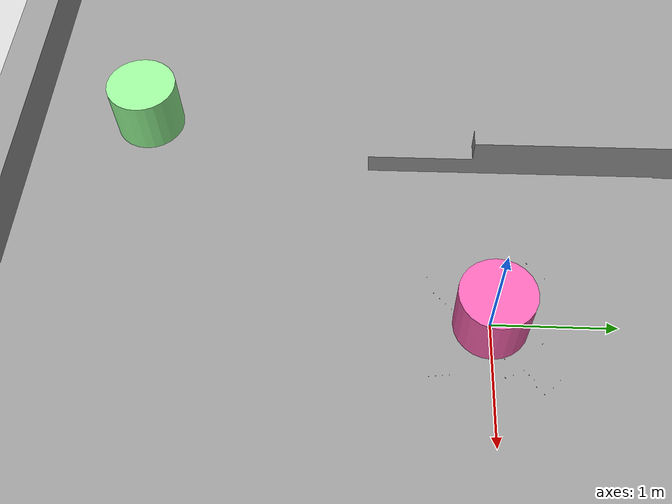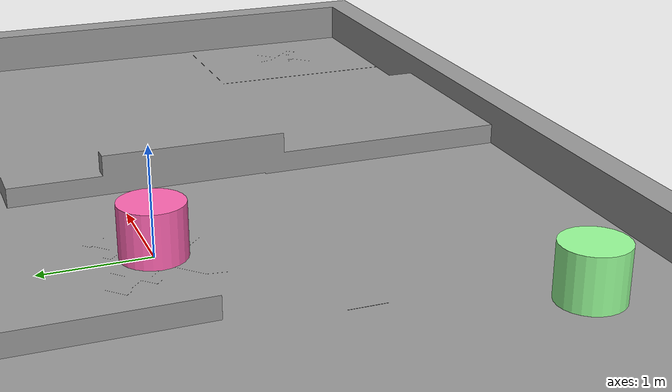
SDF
<sdf version='1.7'>
  <world name='default'>
    <model name='ground_plane'>
      <static>1</static>
      <link name='link'>
        <collision name='collision'>
          <geometry>
            <plane>
              <normal>0 0 1</normal>
              <size>100 100</size>
            </plane>
          </geometry>
          <surface>
            <contact>
              <collide_bitmask>65535</collide_bitmask>
              <ode/>
            </contact>
            <friction>
              <ode>
                <mu>100</mu>
                <mu2>50</mu2>
              </ode>
              <torsional>
                <ode/>
              </torsional>
            </friction>
            <bounce/>
          </surface>
          <max_contacts>10</max_contacts>
        </collision>
        <visual name='visual'>
          <cast_shadows>0</cast_shadows>
          <geometry>
            <plane>
              <normal>0 0 1</normal>
              <size>100 100</size>
            </plane>
          </geometry>
          <material>
            <script>
              <uri>file://media/materials/scripts/gazebo.material</uri>
              <name>Gazebo/Grey</name>
            </script>
          </material>
        </visual>
        <self_collide>0</self_collide>
        <enable_wind>0</enable_wind>
        <kinematic>0</kinematic>
      </link>
    </model>
    <gravity>0 0 -9.8</gravity>
    <magnetic_field>6e-06 2.3e-05 -4.2e-05</magnetic_field>
    <atmosphere type='adiabatic'/>
    <physics type='ode'>
      <max_step_size>0.001</max_step_size>
      <real_time_factor>1</real_time_factor>
      <real_time_update_rate>1000</real_time_update_rate>
    </physics>
    <scene>
      <ambient>0.4 0.4 0.4 1</ambient>
      <background>0.7 0.7 0.7 1</background>
      <shadows>1</shadows>
    </scene>
    <device>default</device>
    <wind/>
    <spherical_coordinates>
      <surface_model>EARTH_WGS84</surface_model>
      <latitude_deg>0</latitude_deg>
      <longitude_deg>0</longitude_deg>
      <elevation>0</elevation>
      <heading_deg>0</heading_deg>
    </spherical_coordinates>
    <model name='RMUL_2026'>
      <link name='link_3'>
        <inertial>
          <mass>1</mass>
          <inertia>
            <ixx>0.166667</ixx>
            <ixy>0</ixy>
            <ixz>0</ixz>
            <iyy>0.166667</iyy>
            <iyz>0</iyz>
            <izz>0.166667</izz>
          </inertia>
          <pose>0 0 0 0 -0 0</pose>
        </inertial>
        <pose>0 0 -3e-06 0 -0 0</pose>
        <gravity>1</gravity>
        <self_collide>0</self_collide>
        <kinematic>0</kinematic>
        <enable_wind>0</enable_wind>
        <visual name='visual'>
          <pose>0 0 0 0 0 0</pose>
          <geometry>
            <mesh>
              <uri>model://RMUL2026_world/meshes/rmul2026.stl</uri>
              <scale>1 1 1</scale>
            </mesh>
          </geometry>
          <material>
            <lighting>1</lighting>
            <script>
              <uri>file://media/materials/scripts/gazebo.material</uri>
              <name>Gazebo/Grey</name>
            </script>
            <shader type='pixel'>
              <normal_map>__default__</normal_map>
            </shader>
            <ambient>0.3 0.3 0.3 1</ambient>
            <diffuse>0.7 0.7 0.7 1</diffuse>
            <specular>0.01 0.01 0.01 1</specular>
            <emissive>0 0 0 1</emissive>
          </material>
          <transparency>0</transparency>
          <cast_shadows>1</cast_shadows>
        </visual>
        <collision name='collision'>
          <laser_retro>0</laser_retro>
          <max_contacts>10</max_contacts>
          <pose>0 0 0 0 0 0</pose>
          <geometry>
            <mesh>
              <uri>model://RMUL2026_world/meshes/rmul2026.stl</uri>
              <scale>1 1 1</scale>
            </mesh>
          </geometry>
          <surface>
            <friction>
              <ode>
                <mu>1</mu>
                <mu2>1</mu2>
                <fdir1>0 0 0</fdir1>
                <slip1>0</slip1>
                <slip2>0</slip2>
              </ode>
              <torsional>
                <coefficient>1</coefficient>
                <patch_radius>0</patch_radius>
                <surface_radius>0</surface_radius>
                <use_patch_radius>1</use_patch_radius>
                <ode>
                  <slip>0</slip>
                </ode>
              </torsional>
            </friction>
            <bounce>
              <restitution_coefficient>0</restitution_coefficient>
              <threshold>1e+06</threshold>
            </bounce>
            <contact>
              <collide_without_contact>0</collide_without_contact>
              <collide_without_contact_bitmask>1</collide_without_contact_bitmask>
              <collide_bitmask>1</collide_bitmask>
              <ode>
                <soft_cfm>0</soft_cfm>
                <soft_erp>0.2</soft_erp>
                <kp>1e+13</kp>
                <kd>1</kd>
                <max_vel>0.01</max_vel>
                <min_depth>0</min_depth>
              </ode>
              <bullet>
                <split_impulse>1</split_impulse>
                <split_impulse_penetration_threshold>-0.01</split_impulse_penetration_threshold>
                <soft_cfm>0</soft_cfm>
                <soft_erp>0.2</soft_erp>
                <kp>1e+13</kp>
                <kd>1</kd>
              </bullet>
            </contact>
          </surface>
        </collision>
      </link>
      <static>1</static>
      <allow_auto_disable>1</allow_auto_disable>
      <pose>0 0 0.001 0 0 0</pose>
    </model>

    <!-- 新增：加载 obstacle1 模型（放在原点） -->
    <model name='obstacle1'>
      <static>false</static>  <!-- 关闭静态，允许运动 -->
      <pose>0.0 0 0.26 0 0 0</pose>  <!-- 原点位置，Z=0.25 适配圆柱体贴地 -->
      <!-- 引入 obstacle1 模型文件 -->
      <include>
        <uri>model://obstacles/obstacle1</uri>
      </include>
      <!-- 加载 obstacle1 运动插件 -->
      <plugin name="obstacle1_motion" filename="/home/ros2/Desktop/pb_rmsimulation/src/rm_simulation/pb_rm_simulation/world/obstacles/lib/libobstacle1.so"/>
    </model>

    <!-- 新增：加载 obstacle2 模型（放在原点） -->
    <model name='obstacle2'>
      <static>false</static>  <!-- 关闭静态，允许运动 -->
      <pose>-2.0 -3.0 0.25 0 0 0</pose>  <!-- 原点位置，Z=0.25 适配圆柱体贴地 -->
      <!-- 引入 obstacle2 模型文件 -->
      <include>
        <uri>model://obstacles/obstacle2</uri>
      </include>
      <!-- 加载 obstacle2 运动插件 -->
      <plugin name="obstacle2_motion" filename="/home/ros2/Desktop/pb_rmsimulation/src/rm_simulation/pb_rm_simulation/world/obstacles/lib/libobstacle2.so"/>
    </model>

    <!-- 修改后的灯光位置 -->
    <light name='user_directional_light_0' type='directional'>
      <pose>10 5 15 0 -0 0</pose>  <!-- 远光灯从左上方照射 -->
      <diffuse>0.8 0.8 0.8 1</diffuse>
      <specular>0.2 0.2 0.2 1</specular>
      <direction>-0.5 -0.3 -1</direction>  <!-- 调整照射方向 -->
      <attenuation>
        <range>50</range>
        <constant>0.5</constant>
        <linear>0.01</linear>
        <quadratic>0.001</quadratic>
      </attenuation>
      <cast_shadows>1</cast_shadows>
    </light>

    <light name='user_point_light_0' type='point'>
      <pose>5 5 8 0 -0 0</pose>  <!-- 右上方点光源 -->
      <diffuse>0.6 0.6 0.6 1</diffuse>
      <specular>0.3 0.3 0.3 1</specular>
      <attenuation>
        <range>30</range>
        <constant>0.5</constant>
        <linear>0.02</linear>
        <quadratic>0.002</quadratic>
      </attenuation>
      <cast_shadows>1</cast_shadows>
    </light>

    <light name='user_spot_light_0' type='spot'>
      <pose>-5 5 8 0 -0 0</pose>  <!-- 左上方聚光灯 -->
      <diffuse>0.7 0.7 0.7 1</diffuse>
      <specular>0.3 0.3 0.3 1</specular>
      <direction>0.5 -0.3 -1</direction>  <!-- 调整聚光方向 -->
      <attenuation>
        <range>25</range>
        <constant>0.5</constant>
        <linear>0.02</linear>
        <quadratic>0.002</quadratic>
      </attenuation>
      <cast_shadows>1</cast_shadows>
      <spot>
        <inner_angle>0.4</inner_angle>
        <outer_angle>0.8</outer_angle>
        <falloff>1</falloff>
      </spot>
    </light>

    <light name='user_spot_light_1' type='spot'>
      <pose>5 -5 8 0 -0 0</pose>  <!-- 右下方聚光灯 -->
      <diffuse>0.7 0.7 0.7 1</diffuse>
      <specular>0.3 0.3 0.3 1</specular>
      <direction>-0.5 0.3 -1</direction>  <!-- 调整聚光方向 -->
      <attenuation>
        <range>25</range>
        <constant>0.5</constant>
        <linear>0.02</linear>
        <quadratic>0.002</quadratic>
      </attenuation>
      <cast_shadows>1</cast_shadows>
      <spot>
        <inner_angle>0.4</inner_angle>
        <outer_angle>0.8</outer_angle>
        <falloff>1</falloff>
      </spot>
    </light>

    <light name='user_spot_light_2' type='spot'>
      <pose>0 0 10 0 -0 0</pose>  <!-- 正上方聚光灯 -->
      <diffuse>0.9 0.9 0.9 1</diffuse>
      <specular>0.4 0.4 0.4 1</specular>
      <direction>0 0 -1</direction>  <!-- 垂直向下照射 -->
      <attenuation>
        <range>30</range>
        <constant>0.5</constant>
        <linear>0.01</linear>
        <quadratic>0.001</quadratic>
      </attenuation>
      <cast_shadows>1</cast_shadows>
      <spot>
        <inner_angle>0.6</inner_angle>
        <outer_angle>1.2</outer_angle>
        <falloff>1</falloff>
      </spot>
    </light>

    <gui fullscreen='0'>
      <camera name='user_camera'>
        <pose>7.46312 3.78907 13.2486 -2.7e-05 1.5698 1.56647</pose>
        <view_controller>orbit</view_controller>
        <projection_type>perspective</projection_type>
      </camera>
    </gui>
  </world>
</sdf>

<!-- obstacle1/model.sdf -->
<sdf version='1.6'>
    <model name="obstacle1">
      <link name="link_obstacle1">
        <collision name="collision">
          <geometry>
            <cylinder>
              <radius>0.3</radius>
              <length>0.50</length>
            </cylinder>
          </geometry>
        </collision>

        <visual name="visual">
          <geometry>
            <cylinder>
              <radius>0.3</radius>
              <length>0.50</length>
            </cylinder>
          </geometry>
          <material>
            <ambient>1.0 0.4 0.7 1.0</ambient>
            <diffuse>1.0 0.4 0.7 1.0</diffuse>
            <specular>0.2 0.2 0.2 1.0</specular>
            <emissive>0.05 0.0 0.03 1.0</emissive>
          </material>
        </visual>
      </link>
      <plugin name="p3d_base_controller_obstacle1" filename="libgazebo_ros_p3d.so">
        <ros>
          <namespace>/obstacle</namespace>
          <remapping>odom:=odom</remapping>
        </ros>
        <always_on>true</always_on>
        <update_rate>50.0</update_rate>
        <body_name>link_obstacle1</body_name>
        <topic_name>odom_obs</topic_name>
        <gaussian_noise>0.0</gaussian_noise>
        <frame_name>world</frame_name>
        <xyz_offset>0 0 0</xyz_offset>
        <rpy_offset>0 0 0</rpy_offset>
      </plugin>
    </model>
</sdf>

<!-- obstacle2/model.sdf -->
<sdf version='1.6'>
    <model name="obstacle2">
      <link name="link_obstacle2">
        <collision name="collision">
          <geometry>
            <cylinder>
              <radius>0.3</radius>
              <length>0.50</length>
            </cylinder>
          </geometry>
        </collision>

        <visual name="visual">
          <geometry>
            <cylinder>
              <radius>0.3</radius>
              <length>0.50</length>
            </cylinder>
          </geometry>
          <material>
            <ambient>0.6 1.0 0.6 1.0</ambient>
            <diffuse>0.6 1.0 0.6 1.0</diffuse>
            <specular>0.2 0.2 0.2 1.0</specular>
            <emissive>0.05 0.10 0.05 1.0</emissive>
          </material>
        </visual>
      </link>
      <plugin name="p3d_base_controller_obstacle2" filename="libgazebo_ros_p3d.so">
        <ros>
          <namespace>/obstacle</namespace>
          <remapping>odom:=odom</remapping>
        </ros>
        <always_on>true</always_on>
        <update_rate>50.0</update_rate>
        <body_name>link_obstacle2</body_name>
        <topic_name>odom_obs</topic_name>
        <gaussian_noise>0.0</gaussian_noise>
        <frame_name>world</frame_name>
        <xyz_offset>0 0 0</xyz_offset>
        <rpy_offset>0 0 0</rpy_offset>
      </plugin>
    </model>
</sdf>
